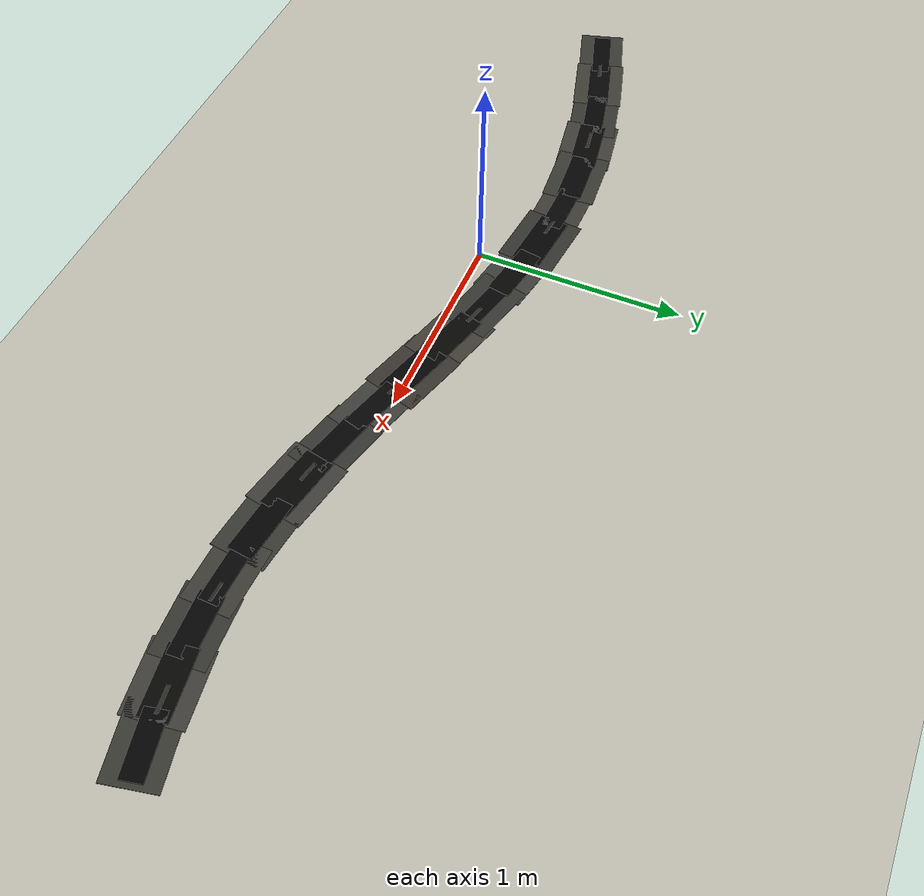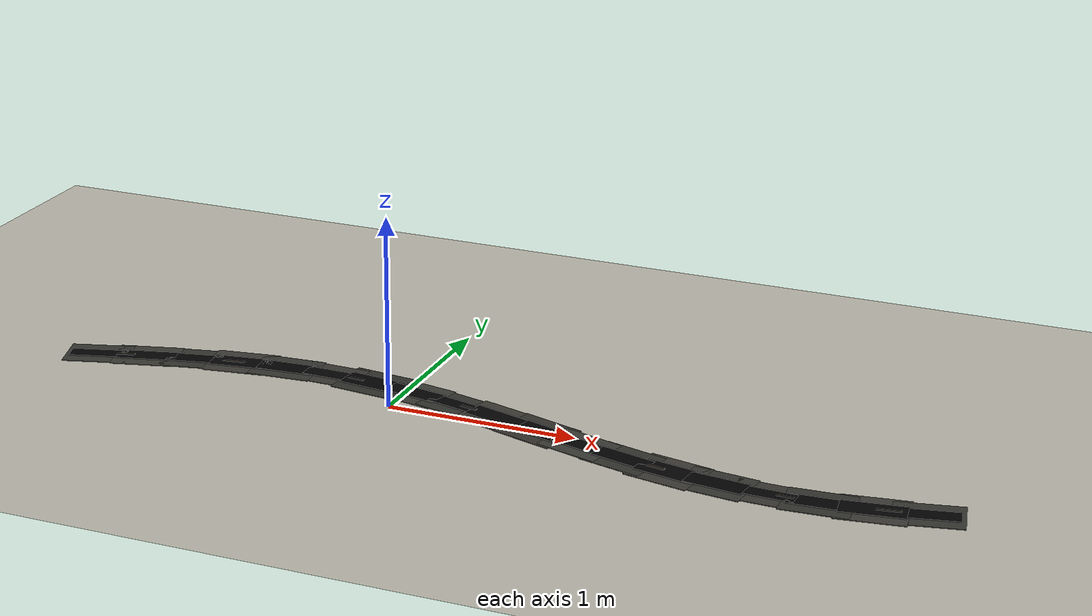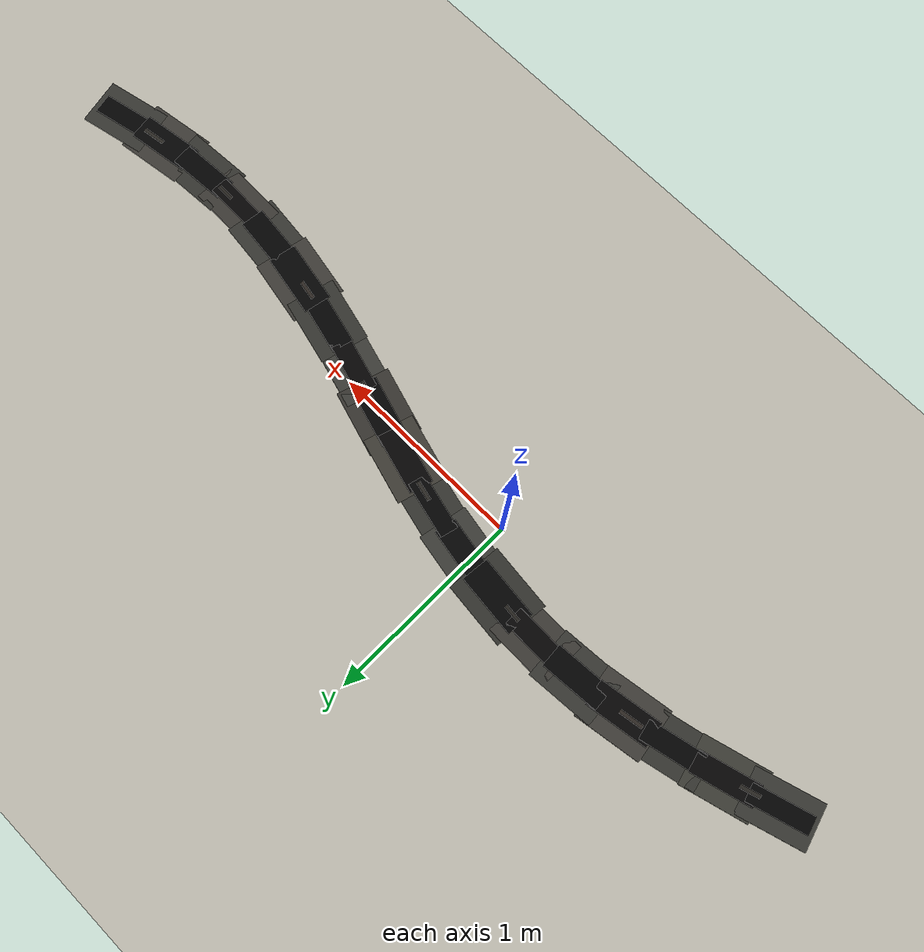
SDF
<?xml version="1.0" ?>
<sdf version="1.6">
  <world name="seam_world_curve">
    <gravity>0 0 -9.8</gravity>

    <physics name="default_physics" type="ode">
      <max_step_size>0.001</max_step_size>
      <real_time_factor>1.0</real_time_factor>
      <real_time_update_rate>1000</real_time_update_rate>
    </physics>

    <scene>
      <ambient>0.58 0.58 0.58 1</ambient>
      <background>0.72 0.72 0.72 1</background>
      <shadows>true</shadows>
    </scene>

    <light name="main_light" type="directional">
      <cast_shadows>true</cast_shadows>
      <pose>0 0 8 0 0 0</pose>
      <diffuse>0.88 0.88 0.84 1</diffuse>
      <specular>0.18 0.18 0.18 1</specular>
      <direction>-0.35 0.15 -0.92</direction>
    </light>

    <light name="soft_front_light" type="point">
      <cast_shadows>false</cast_shadows>
      <pose>-2.0 0.0 3.2 0 0 0</pose>
      <diffuse>0.35 0.35 0.32 1</diffuse>
      <specular>0.05 0.05 0.05 1</specular>
      <attenuation>
        <range>7.0</range>
        <constant>0.8</constant>
        <linear>0.08</linear>
        <quadratic>0.02</quadratic>
      </attenuation>
    </light>

    <model name="ground_plane">
      <static>true</static>
      <link name="ground_link">
        <collision name="ground_collision">
          <geometry>
            <plane>
              <normal>0 0 1</normal>
              <size>20 20</size>
            </plane>
          </geometry>
          <surface>
            <friction>
              <ode>
                <mu>100</mu>
                <mu2>100</mu2>
              </ode>
            </friction>
          </surface>
        </collision>
        <visual name="ground_visual">
          <geometry>
            <plane>
              <normal>0 0 1</normal>
              <size>20 20</size>
            </plane>
          </geometry>
          <material>
            <ambient>0.76 0.75 0.70 1</ambient>
            <diffuse>0.76 0.75 0.70 1</diffuse>
            <specular>0.04 0.04 0.04 1</specular>
          </material>
        </visual>
      </link>
    </model>

    <model name="curved_weld_seam">
      <static>true</static>
      <link name="seam_visual_link">
        <!-- Wide grey zones approximate heat affected edges around the darker seam core. -->
        <visual name="heat_zone_00">
          <pose>-1.70 0.030 0.003 0 0 0.289</pose>
          <geometry><box><size>0.34 0.23 0.004</size></box></geometry>
          <material><ambient>0.22 0.22 0.20 1</ambient><diffuse>0.22 0.22 0.20 1</diffuse><specular>0.02 0.02 0.02 1</specular></material>
        </visual>
        <visual name="heat_zone_01">
          <pose>-1.45 0.102 0.003 0 0 0.267</pose>
          <geometry><box><size>0.34 0.25 0.004</size></box></geometry>
          <material><ambient>0.24 0.24 0.21 1</ambient><diffuse>0.24 0.24 0.21 1</diffuse><specular>0.02 0.02 0.02 1</specular></material>
        </visual>
        <visual name="heat_zone_02">
          <pose>-1.20 0.165 0.003 0 0 0.222</pose>
          <geometry><box><size>0.34 0.24 0.004</size></box></geometry>
          <material><ambient>0.21 0.21 0.19 1</ambient><diffuse>0.21 0.21 0.19 1</diffuse><specular>0.02 0.02 0.02 1</specular></material>
        </visual>
        <visual name="heat_zone_03">
          <pose>-0.95 0.213 0.003 0 0 0.156</pose>
          <geometry><box><size>0.34 0.27 0.004</size></box></geometry>
          <material><ambient>0.25 0.24 0.22 1</ambient><diffuse>0.25 0.24 0.22 1</diffuse><specular>0.02 0.02 0.02 1</specular></material>
        </visual>
        <visual name="heat_zone_04">
          <pose>-0.70 0.242 0.003 0 0 0.074</pose>
          <geometry><box><size>0.34 0.26 0.004</size></box></geometry>
          <material><ambient>0.22 0.22 0.20 1</ambient><diffuse>0.22 0.22 0.20 1</diffuse><specular>0.02 0.02 0.02 1</specular></material>
        </visual>
        <visual name="heat_zone_05">
          <pose>-0.45 0.250 0.003 0 0 -0.015</pose>
          <geometry><box><size>0.34 0.24 0.004</size></box></geometry>
          <material><ambient>0.24 0.23 0.21 1</ambient><diffuse>0.24 0.23 0.21 1</diffuse><specular>0.02 0.02 0.02 1</specular></material>
        </visual>
        <visual name="heat_zone_06">
          <pose>-0.20 0.235 0.003 0 0 -0.102</pose>
          <geometry><box><size>0.34 0.28 0.004</size></box></geometry>
          <material><ambient>0.20 0.20 0.18 1</ambient><diffuse>0.20 0.20 0.18 1</diffuse><specular>0.02 0.02 0.02 1</specular></material>
        </visual>
        <visual name="heat_zone_07">
          <pose>0.05 0.199 0.003 0 0 -0.179</pose>
          <geometry><box><size>0.34 0.25 0.004</size></box></geometry>
          <material><ambient>0.24 0.24 0.22 1</ambient><diffuse>0.24 0.24 0.22 1</diffuse><specular>0.02 0.02 0.02 1</specular></material>
        </visual>
        <visual name="heat_zone_08">
          <pose>0.30 0.146 0.003 0 0 -0.239</pose>
          <geometry><box><size>0.34 0.23 0.004</size></box></geometry>
          <material><ambient>0.21 0.21 0.19 1</ambient><diffuse>0.21 0.21 0.19 1</diffuse><specular>0.02 0.02 0.02 1</specular></material>
        </visual>
        <visual name="heat_zone_09">
          <pose>0.55 0.079 0.003 0 0 -0.277</pose>
          <geometry><box><size>0.34 0.26 0.004</size></box></geometry>
          <material><ambient>0.25 0.24 0.21 1</ambient><diffuse>0.25 0.24 0.21 1</diffuse><specular>0.02 0.02 0.02 1</specular></material>
        </visual>
        <visual name="heat_zone_10">
          <pose>0.80 0.005 0.003 0 0 -0.291</pose>
          <geometry><box><size>0.34 0.27 0.004</size></box></geometry>
          <material><ambient>0.22 0.21 0.19 1</ambient><diffuse>0.22 0.21 0.19 1</diffuse><specular>0.02 0.02 0.02 1</specular></material>
        </visual>
        <visual name="heat_zone_11">
          <pose>1.05 -0.069 0.003 0 0 -0.281</pose>
          <geometry><box><size>0.34 0.24 0.004</size></box></geometry>
          <material><ambient>0.24 0.24 0.22 1</ambient><diffuse>0.24 0.24 0.22 1</diffuse><specular>0.02 0.02 0.02 1</specular></material>
        </visual>
        <visual name="heat_zone_12">
          <pose>1.30 -0.137 0.003 0 0 -0.246</pose>
          <geometry><box><size>0.34 0.25 0.004</size></box></geometry>
          <material><ambient>0.21 0.21 0.19 1</ambient><diffuse>0.21 0.21 0.19 1</diffuse><specular>0.02 0.02 0.02 1</specular></material>
        </visual>
        <visual name="heat_zone_13">
          <pose>1.55 -0.192 0.003 0 0 -0.189</pose>
          <geometry><box><size>0.34 0.28 0.004</size></box></geometry>
          <material><ambient>0.25 0.24 0.22 1</ambient><diffuse>0.25 0.24 0.22 1</diffuse><specular>0.02 0.02 0.02 1</specular></material>
        </visual>
        <visual name="heat_zone_14">
          <pose>1.80 -0.231 0.003 0 0 -0.114</pose>
          <geometry><box><size>0.34 0.26 0.004</size></box></geometry>
          <material><ambient>0.22 0.22 0.20 1</ambient><diffuse>0.22 0.22 0.20 1</diffuse><specular>0.02 0.02 0.02 1</specular></material>
        </visual>
        <visual name="heat_zone_15">
          <pose>2.05 -0.249 0.003 0 0 -0.028</pose>
          <geometry><box><size>0.34 0.23 0.004</size></box></geometry>
          <material><ambient>0.24 0.23 0.21 1</ambient><diffuse>0.24 0.23 0.21 1</diffuse><specular>0.02 0.02 0.02 1</specular></material>
        </visual>
        <visual name="heat_zone_16">
          <pose>2.30 -0.245 0.003 0 0 0.062</pose>
          <geometry><box><size>0.34 0.25 0.004</size></box></geometry>
          <material><ambient>0.21 0.21 0.19 1</ambient><diffuse>0.21 0.21 0.19 1</diffuse><specular>0.02 0.02 0.02 1</specular></material>
        </visual>
        <visual name="heat_zone_17">
          <pose>2.55 -0.218 0.003 0 0 0.145</pose>
          <geometry><box><size>0.34 0.27 0.004</size></box></geometry>
          <material><ambient>0.25 0.24 0.22 1</ambient><diffuse>0.25 0.24 0.22 1</diffuse><specular>0.02 0.02 0.02 1</specular></material>
        </visual>
        <visual name="heat_zone_18">
          <pose>2.80 -0.173 0.003 0 0 0.213</pose>
          <geometry><box><size>0.34 0.24 0.004</size></box></geometry>
          <material><ambient>0.22 0.22 0.20 1</ambient><diffuse>0.22 0.22 0.20 1</diffuse><specular>0.02 0.02 0.02 1</specular></material>
        </visual>

        <!-- Dark overlapping cores create the actual weld groove with irregular width. -->
        <visual name="seam_core_00">
          <pose>-1.70 0.030 0.006 0 0 0.289</pose>
          <geometry><box><size>0.30 0.09 0.005</size></box></geometry>
          <material><ambient>0.015 0.015 0.014 1</ambient><diffuse>0.015 0.015 0.014 1</diffuse><specular>0 0 0 1</specular></material>
        </visual>
        <visual name="seam_core_01">
          <pose>-1.45 0.102 0.006 0 0 0.267</pose>
          <geometry><box><size>0.31 0.11 0.005</size></box></geometry>
          <material><ambient>0.020 0.019 0.017 1</ambient><diffuse>0.020 0.019 0.017 1</diffuse><specular>0 0 0 1</specular></material>
        </visual>
        <visual name="seam_core_02">
          <pose>-1.20 0.165 0.006 0 0 0.222</pose>
          <geometry><box><size>0.29 0.10 0.005</size></box></geometry>
          <material><ambient>0.012 0.012 0.011 1</ambient><diffuse>0.012 0.012 0.011 1</diffuse><specular>0 0 0 1</specular></material>
        </visual>
        <visual name="seam_core_03">
          <pose>-0.95 0.213 0.006 0 0 0.156</pose>
          <geometry><box><size>0.32 0.13 0.005</size></box></geometry>
          <material><ambient>0.020 0.018 0.016 1</ambient><diffuse>0.020 0.018 0.016 1</diffuse><specular>0 0 0 1</specular></material>
        </visual>
        <visual name="seam_core_04">
          <pose>-0.70 0.242 0.006 0 0 0.074</pose>
          <geometry><box><size>0.30 0.12 0.005</size></box></geometry>
          <material><ambient>0.014 0.014 0.013 1</ambient><diffuse>0.014 0.014 0.013 1</diffuse><specular>0 0 0 1</specular></material>
        </visual>
        <visual name="seam_core_05">
          <pose>-0.45 0.250 0.006 0 0 -0.015</pose>
          <geometry><box><size>0.28 0.10 0.005</size></box></geometry>
          <material><ambient>0.020 0.019 0.017 1</ambient><diffuse>0.020 0.019 0.017 1</diffuse><specular>0 0 0 1</specular></material>
        </visual>
        <visual name="seam_core_06">
          <pose>-0.20 0.235 0.006 0 0 -0.102</pose>
          <geometry><box><size>0.32 0.14 0.005</size></box></geometry>
          <material><ambient>0.012 0.012 0.011 1</ambient><diffuse>0.012 0.012 0.011 1</diffuse><specular>0 0 0 1</specular></material>
        </visual>
        <visual name="seam_core_07">
          <pose>0.05 0.199 0.006 0 0 -0.179</pose>
          <geometry><box><size>0.30 0.11 0.005</size></box></geometry>
          <material><ambient>0.018 0.017 0.016 1</ambient><diffuse>0.018 0.017 0.016 1</diffuse><specular>0 0 0 1</specular></material>
        </visual>
        <visual name="seam_core_08">
          <pose>0.30 0.146 0.006 0 0 -0.239</pose>
          <geometry><box><size>0.29 0.09 0.005</size></box></geometry>
          <material><ambient>0.014 0.014 0.013 1</ambient><diffuse>0.014 0.014 0.013 1</diffuse><specular>0 0 0 1</specular></material>
        </visual>
        <visual name="seam_core_09">
          <pose>0.55 0.079 0.006 0 0 -0.277</pose>
          <geometry><box><size>0.31 0.12 0.005</size></box></geometry>
          <material><ambient>0.020 0.018 0.016 1</ambient><diffuse>0.020 0.018 0.016 1</diffuse><specular>0 0 0 1</specular></material>
        </visual>
        <visual name="seam_core_10">
          <pose>0.80 0.005 0.006 0 0 -0.291</pose>
          <geometry><box><size>0.32 0.13 0.005</size></box></geometry>
          <material><ambient>0.012 0.012 0.011 1</ambient><diffuse>0.012 0.012 0.011 1</diffuse><specular>0 0 0 1</specular></material>
        </visual>
        <visual name="seam_core_11">
          <pose>1.05 -0.069 0.006 0 0 -0.281</pose>
          <geometry><box><size>0.28 0.10 0.005</size></box></geometry>
          <material><ambient>0.020 0.019 0.017 1</ambient><diffuse>0.020 0.019 0.017 1</diffuse><specular>0 0 0 1</specular></material>
        </visual>
        <visual name="seam_core_12">
          <pose>1.30 -0.137 0.006 0 0 -0.246</pose>
          <geometry><box><size>0.30 0.11 0.005</size></box></geometry>
          <material><ambient>0.014 0.014 0.013 1</ambient><diffuse>0.014 0.014 0.013 1</diffuse><specular>0 0 0 1</specular></material>
        </visual>
        <visual name="seam_core_13">
          <pose>1.55 -0.192 0.006 0 0 -0.189</pose>
          <geometry><box><size>0.32 0.14 0.005</size></box></geometry>
          <material><ambient>0.019 0.018 0.016 1</ambient><diffuse>0.019 0.018 0.016 1</diffuse><specular>0 0 0 1</specular></material>
        </visual>
        <visual name="seam_core_14">
          <pose>1.80 -0.231 0.006 0 0 -0.114</pose>
          <geometry><box><size>0.30 0.12 0.005</size></box></geometry>
          <material><ambient>0.012 0.012 0.011 1</ambient><diffuse>0.012 0.012 0.011 1</diffuse><specular>0 0 0 1</specular></material>
        </visual>
        <visual name="seam_core_15">
          <pose>2.05 -0.249 0.006 0 0 -0.028</pose>
          <geometry><box><size>0.29 0.09 0.005</size></box></geometry>
          <material><ambient>0.020 0.019 0.017 1</ambient><diffuse>0.020 0.019 0.017 1</diffuse><specular>0 0 0 1</specular></material>
        </visual>
        <visual name="seam_core_16">
          <pose>2.30 -0.245 0.006 0 0 0.062</pose>
          <geometry><box><size>0.30 0.11 0.005</size></box></geometry>
          <material><ambient>0.014 0.014 0.013 1</ambient><diffuse>0.014 0.014 0.013 1</diffuse><specular>0 0 0 1</specular></material>
        </visual>
        <visual name="seam_core_17">
          <pose>2.55 -0.218 0.006 0 0 0.145</pose>
          <geometry><box><size>0.32 0.13 0.005</size></box></geometry>
          <material><ambient>0.018 0.017 0.016 1</ambient><diffuse>0.018 0.017 0.016 1</diffuse><specular>0 0 0 1</specular></material>
        </visual>
        <visual name="seam_core_18">
          <pose>2.80 -0.173 0.006 0 0 0.213</pose>
          <geometry><box><size>0.29 0.10 0.005</size></box></geometry>
          <material><ambient>0.012 0.012 0.011 1</ambient><diffuse>0.012 0.012 0.011 1</diffuse><specular>0 0 0 1</specular></material>
        </visual>

        <!-- Small brighter bead fragments break the perfectly uniform synthetic look. -->
        <visual name="bead_highlight_00">
          <pose>-1.56 0.068 0.009 0 0 0.289</pose>
          <geometry><box><size>0.10 0.018 0.004</size></box></geometry>
          <material><ambient>0.16 0.15 0.13 1</ambient><diffuse>0.16 0.15 0.13 1</diffuse><specular>0.04 0.04 0.04 1</specular></material>
        </visual>
        <visual name="bead_highlight_01">
          <pose>-0.99 0.207 0.009 0 0 0.156</pose>
          <geometry><box><size>0.12 0.018 0.004</size></box></geometry>
          <material><ambient>0.18 0.16 0.14 1</ambient><diffuse>0.18 0.16 0.14 1</diffuse><specular>0.04 0.04 0.04 1</specular></material>
        </visual>
        <visual name="bead_highlight_02">
          <pose>-0.30 0.243 0.009 0 0 -0.102</pose>
          <geometry><box><size>0.09 0.016 0.004</size></box></geometry>
          <material><ambient>0.15 0.14 0.12 1</ambient><diffuse>0.15 0.14 0.12 1</diffuse><specular>0.04 0.04 0.04 1</specular></material>
        </visual>
        <visual name="bead_highlight_03">
          <pose>0.38 0.127 0.009 0 0 -0.239</pose>
          <geometry><box><size>0.10 0.018 0.004</size></box></geometry>
          <material><ambient>0.17 0.16 0.14 1</ambient><diffuse>0.17 0.16 0.14 1</diffuse><specular>0.04 0.04 0.04 1</specular></material>
        </visual>
        <visual name="bead_highlight_04">
          <pose>0.91 -0.027 0.009 0 0 -0.291</pose>
          <geometry><box><size>0.11 0.016 0.004</size></box></geometry>
          <material><ambient>0.16 0.15 0.13 1</ambient><diffuse>0.16 0.15 0.13 1</diffuse><specular>0.04 0.04 0.04 1</specular></material>
        </visual>
        <visual name="bead_highlight_05">
          <pose>1.48 -0.177 0.009 0 0 -0.189</pose>
          <geometry><box><size>0.10 0.018 0.004</size></box></geometry>
          <material><ambient>0.18 0.16 0.14 1</ambient><diffuse>0.18 0.16 0.14 1</diffuse><specular>0.04 0.04 0.04 1</specular></material>
        </visual>
        <visual name="bead_highlight_06">
          <pose>2.14 -0.247 0.009 0 0 -0.028</pose>
          <geometry><box><size>0.09 0.016 0.004</size></box></geometry>
          <material><ambient>0.15 0.14 0.12 1</ambient><diffuse>0.15 0.14 0.12 1</diffuse><specular>0.04 0.04 0.04 1</specular></material>
        </visual>
        <visual name="bead_highlight_07">
          <pose>2.62 -0.203 0.009 0 0 0.145</pose>
          <geometry><box><size>0.12 0.018 0.004</size></box></geometry>
          <material><ambient>0.17 0.16 0.14 1</ambient><diffuse>0.17 0.16 0.14 1</diffuse><specular>0.04 0.04 0.04 1</specular></material>
        </visual>
      </link>
    </model>

  </world>
</sdf>
